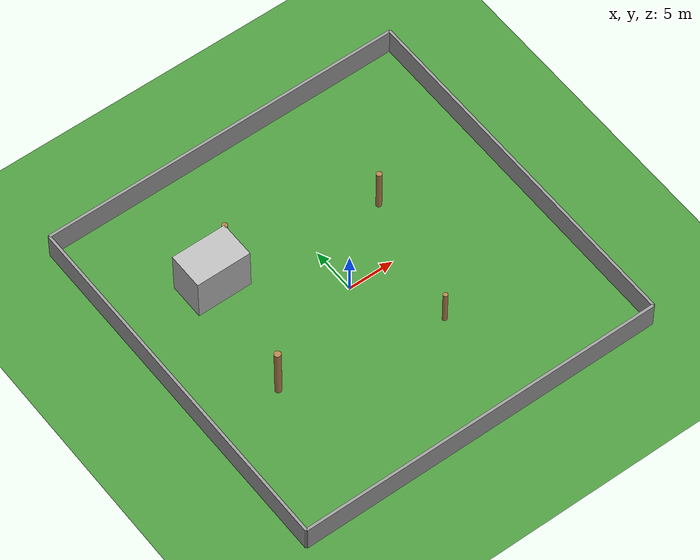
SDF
<?xml version="1.0" ?>
<sdf version="1.6">
  <world name="outdoor_world">

    <!-- Physics -->
    <physics type="ode">
      <real_time_update_rate>1000</real_time_update_rate>
      <max_step_size>0.001</max_step_size>
      <real_time_factor>1</real_time_factor>
    </physics>

    <!-- Plugins -->
    <plugin name="gazebo_ros_state" filename="libgazebo_ros_state.so"/>
    <plugin name="gazebo_ros_factory" filename="libgazebo_ros_factory.so"/>

    <!-- Atmosphere / GPS datum -->
    <spherical_coordinates>
      <surface_model>EARTH_WGS84</surface_model>
      <latitude_deg>12.9716</latitude_deg>
      <longitude_deg>77.5946</longitude_deg>
      <elevation>920</elevation>
      <heading_deg>0</heading_deg>
    </spherical_coordinates>

    <!-- Sun -->
    <light name="sun" type="directional">
      <cast_shadows>true</cast_shadows>
      <pose>0 0 100 0 -0 0</pose>
      <diffuse>0.95 0.95 0.95 1</diffuse>
      <specular>0.1 0.1 0.1 1</specular>
      <direction>-0.5 0.1 -0.9</direction>
    </light>

    <!-- Sky -->
    <sky>
      <time>14</time>
      <clouds>
        <speed>3</speed>
        <humidity>0.5</humidity>
        <mean_size>0.5</mean_size>
        <ambient>0.8 0.8 0.8 1</ambient>
      </clouds>
    </sky>

    <!-- Ground plane (Green grass colour) -->
    <model name="ground_plane">
      <static>true</static>
      <link name="link">
        <collision name="collision">
          <geometry>
            <plane><normal>0 0 1</normal><size>500 500</size></plane>
          </geometry>
          <surface>
            <friction><ode><mu>0.9</mu><mu2>0.9</mu2></ode></friction>
          </surface>
        </collision>
        <visual name="visual">
          <cast_shadows>false</cast_shadows>
          <geometry>
            <plane><normal>0 0 1</normal><size>500 500</size></plane>
          </geometry>
          <material>
            <script>
              <uri>file://media/materials/scripts/gazebo.material</uri>
              <name>Gazebo/Grass</name>
            </script>
          </material>
        </visual>
      </link>
    </model>

    <!-- ───── Outer boundary fence (40×40 m arena) ───── -->
    <!-- North wall -->
    <model name="wall_north">
      <static>true</static>
      <pose>0 20 1.5 0 0 0</pose>
      <link name="link">
        <collision name="c"><geometry><box><size>40 0.3 3</size></box></geometry></collision>
        <visual name="v">
          <geometry><box><size>40 0.3 3</size></box></geometry>
          <material><script><uri>file://media/materials/scripts/gazebo.material</uri><name>Gazebo/Grey</name></script></material>
        </visual>
      </link>
    </model>
    <!-- South wall -->
    <model name="wall_south">
      <static>true</static>
      <pose>0 -20 1.5 0 0 0</pose>
      <link name="link">
        <collision name="c"><geometry><box><size>40 0.3 3</size></box></geometry></collision>
        <visual name="v">
          <geometry><box><size>40 0.3 3</size></box></geometry>
          <material><script><uri>file://media/materials/scripts/gazebo.material</uri><name>Gazebo/Grey</name></script></material>
        </visual>
      </link>
    </model>
    <!-- East wall -->
    <model name="wall_east">
      <static>true</static>
      <pose>20 0 1.5 0 0 0</pose>
      <link name="link">
        <collision name="c"><geometry><box><size>0.3 40 3</size></box></geometry></collision>
        <visual name="v">
          <geometry><box><size>0.3 40 3</size></box></geometry>
          <material><script><uri>file://media/materials/scripts/gazebo.material</uri><name>Gazebo/Grey</name></script></material>
        </visual>
      </link>
    </model>
    <!-- West wall -->
    <model name="wall_west">
      <static>true</static>
      <pose>-20 0 1.5 0 0 0</pose>
      <link name="link">
        <collision name="c"><geometry><box><size>0.3 40 3</size></box></geometry></collision>
        <visual name="v">
          <geometry><box><size>0.3 40 3</size></box></geometry>
          <material><script><uri>file://media/materials/scripts/gazebo.material</uri><name>Gazebo/Grey</name></script></material>
        </visual>
      </link>
    </model>

    <!-- ───── Some trees / obstacles ───── -->
    <model name="tree_1">
      <static>true</static>
      <pose>8 6 0 0 0 0</pose>
      <link name="link">
        <collision name="c"><geometry><cylinder><radius>0.3</radius><length>5</length></cylinder></geometry></collision>
        <visual name="v">
          <pose>0 0 2.5 0 0 0</pose>
          <geometry><cylinder><radius>0.3</radius><length>5</length></cylinder></geometry>
          <material><script><uri>file://media/materials/scripts/gazebo.material</uri><name>Gazebo/Wood</name></script></material>
        </visual>
      </link>
    </model>
    <model name="tree_2">
      <static>true</static>
      <pose>-7 10 0 0 0 0</pose>
      <link name="link">
        <collision name="c"><geometry><cylinder><radius>0.3</radius><length>5</length></cylinder></geometry></collision>
        <visual name="v">
          <pose>0 0 2.5 0 0 0</pose>
          <geometry><cylinder><radius>0.3</radius><length>5</length></cylinder></geometry>
          <material><script><uri>file://media/materials/scripts/gazebo.material</uri><name>Gazebo/Wood</name></script></material>
        </visual>
      </link>
    </model>
    <model name="tree_3">
      <static>true</static>
      <pose>5 -8 0 0 0 0</pose>
      <link name="link">
        <collision name="c"><geometry><cylinder><radius>0.25</radius><length>4</length></cylinder></geometry></collision>
        <visual name="v">
          <pose>0 0 2 0 0 0</pose>
          <geometry><cylinder><radius>0.25</radius><length>4</length></cylinder></geometry>
          <material><script><uri>file://media/materials/scripts/gazebo.material</uri><name>Gazebo/Wood</name></script></material>
        </visual>
      </link>
    </model>
    <model name="tree_4">
      <static>true</static>
      <pose>-12 -5 0 0 0 0</pose>
      <link name="link">
        <collision name="c"><geometry><cylinder><radius>0.35</radius><length>6</length></cylinder></geometry></collision>
        <visual name="v">
          <pose>0 0 3 0 0 0</pose>
          <geometry><cylinder><radius>0.35</radius><length>6</length></cylinder></geometry>
          <material><script><uri>file://media/materials/scripts/gazebo.material</uri><name>Gazebo/Wood</name></script></material>
        </visual>
      </link>
    </model>

    <!-- A concrete block / building -->
    <model name="building_1">
      <static>true</static>
      <pose>-10 8 2.5 0 0 0</pose>
      <link name="link">
        <collision name="c"><geometry><box><size>6 4 5</size></box></geometry></collision>
        <visual name="v">
          <geometry><box><size>6 4 5</size></box></geometry>
          <material><script><uri>file://media/materials/scripts/gazebo.material</uri><name>Gazebo/Concrete</name></script></material>
        </visual>
      </link>
    </model>

  </world>
</sdf>
